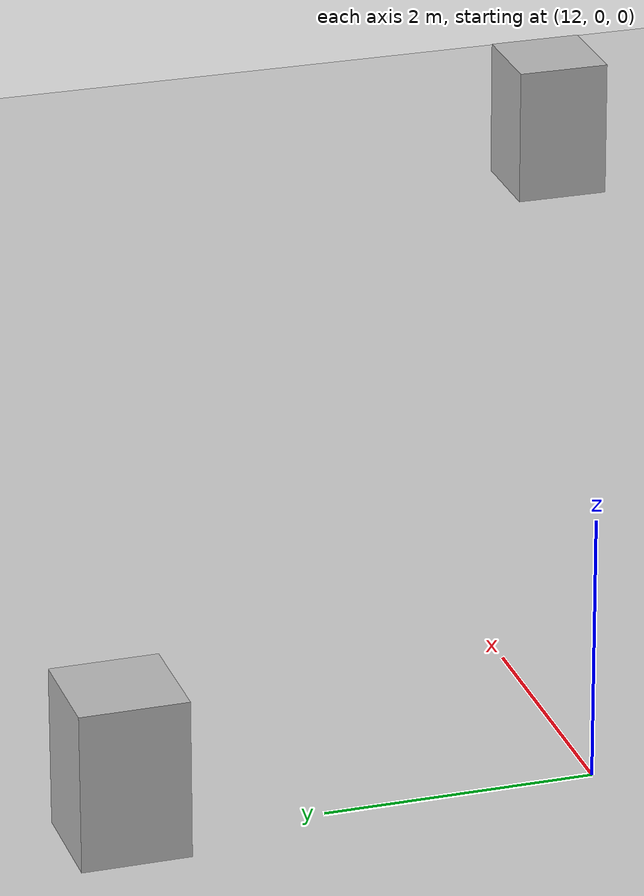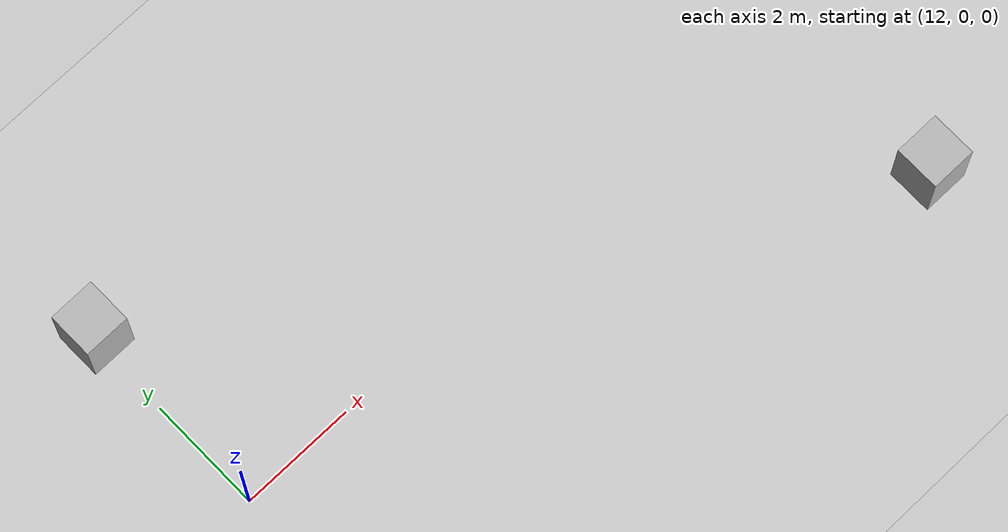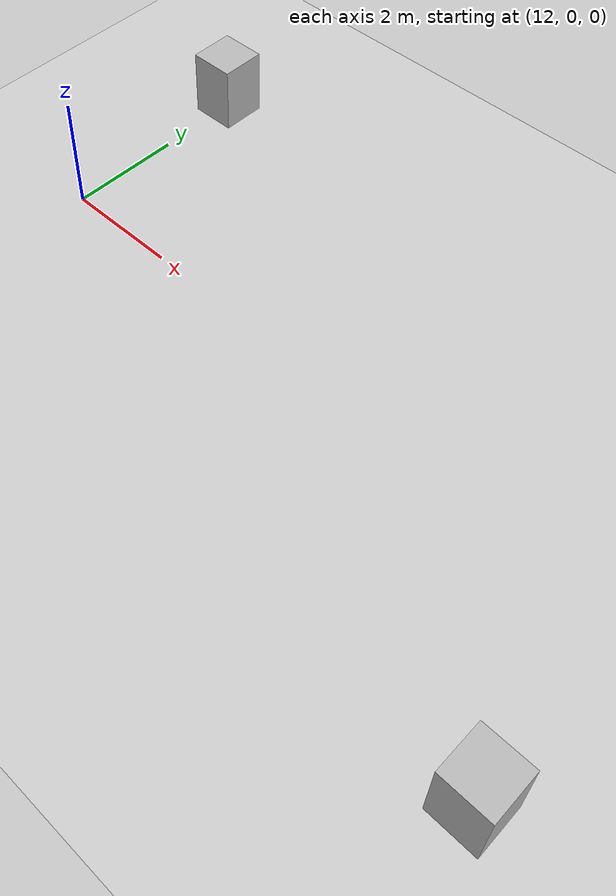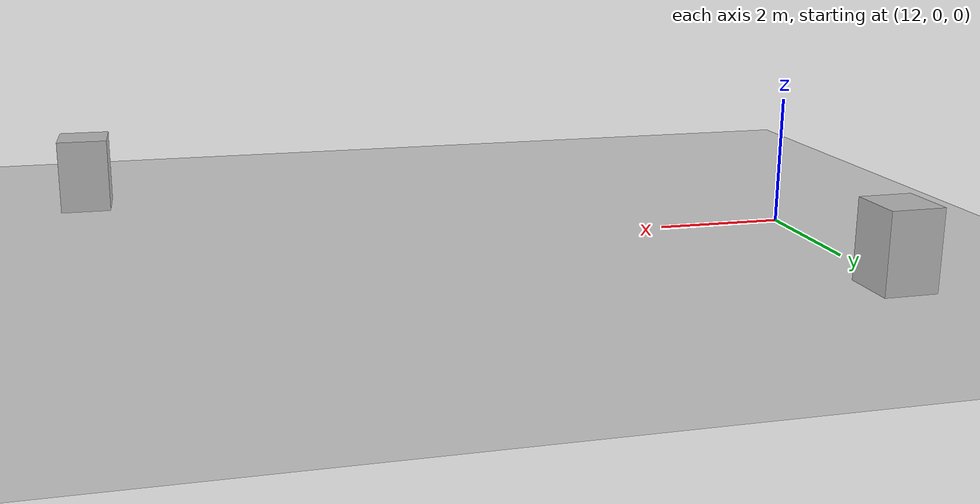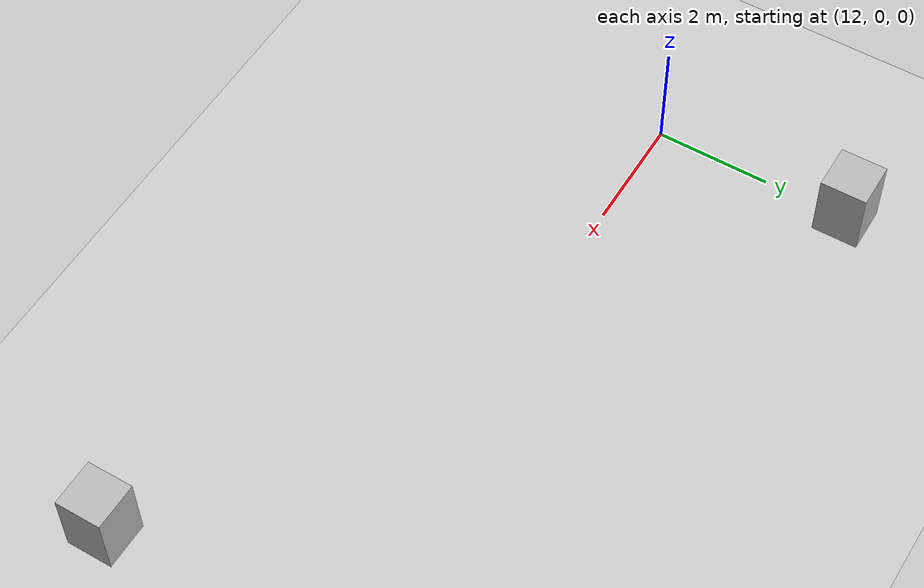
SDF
<?xml version="1.0"?>
<sdf version="1.6">
  <world name="v2-cal-cruise-straight-35m-s4301">
    <gravity>0 0 -9.81</gravity>
    <physics name="v2_deterministic" type="ode">
      <max_step_size>0.002</max_step_size>
      <real_time_update_rate>500</real_time_update_rate>
    </physics>
    <include>
      <uri>model://sun</uri>
    </include>
    <include>
      <uri>model://ground_plane</uri>
    </include>
    <model name="cal-cruise-left">
      <static>true</static>
      <pose>12.055756268 3.469463701 0.600000000 0 0 0.005330509</pose>
      <link name="link">
        <collision name="collision">
          <geometry>
            <box>
              <size>0.800000 0.800000 1.200000</size>
            </box>
          </geometry>
        </collision>
        <visual name="visual">
          <geometry>
            <box>
              <size>0.800000 0.800000 1.200000</size>
            </box>
          </geometry>
        </visual>
      </link>
    </model>
    <model name="cal-cruise-right">
      <static>true</static>
      <pose>23.045193564 -3.475248475 0.600000000 0 0 -0.003257158</pose>
      <link name="link">
        <collision name="collision">
          <geometry>
            <box>
              <size>0.800000 0.800000 1.200000</size>
            </box>
          </geometry>
        </collision>
        <visual name="visual">
          <geometry>
            <box>
              <size>0.800000 0.800000 1.200000</size>
            </box>
          </geometry>
        </visual>
      </link>
    </model>
  </world>
</sdf>
